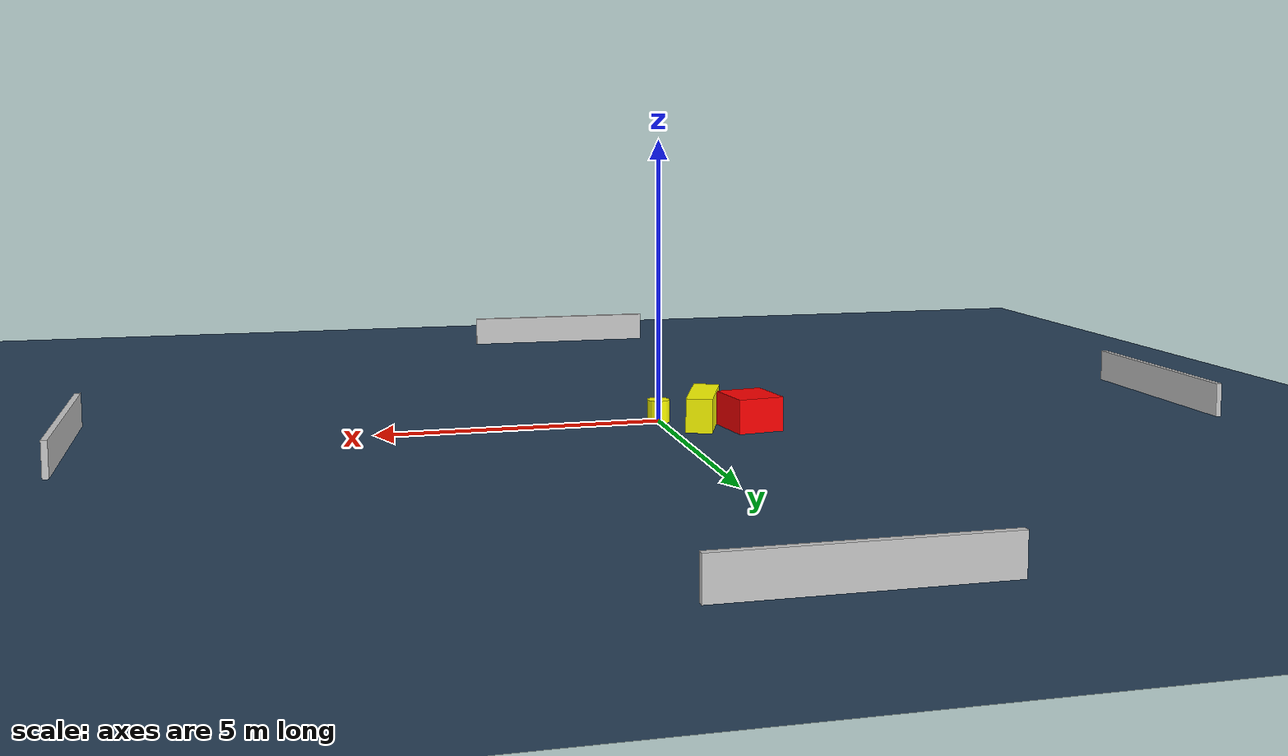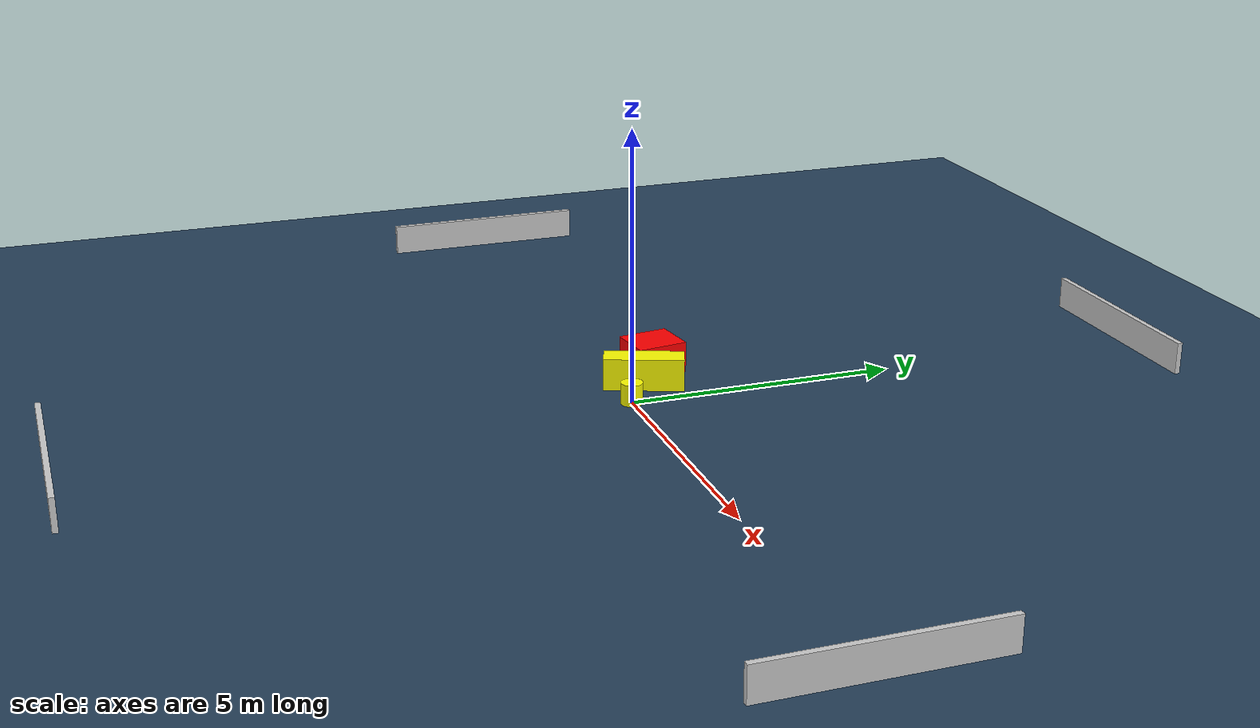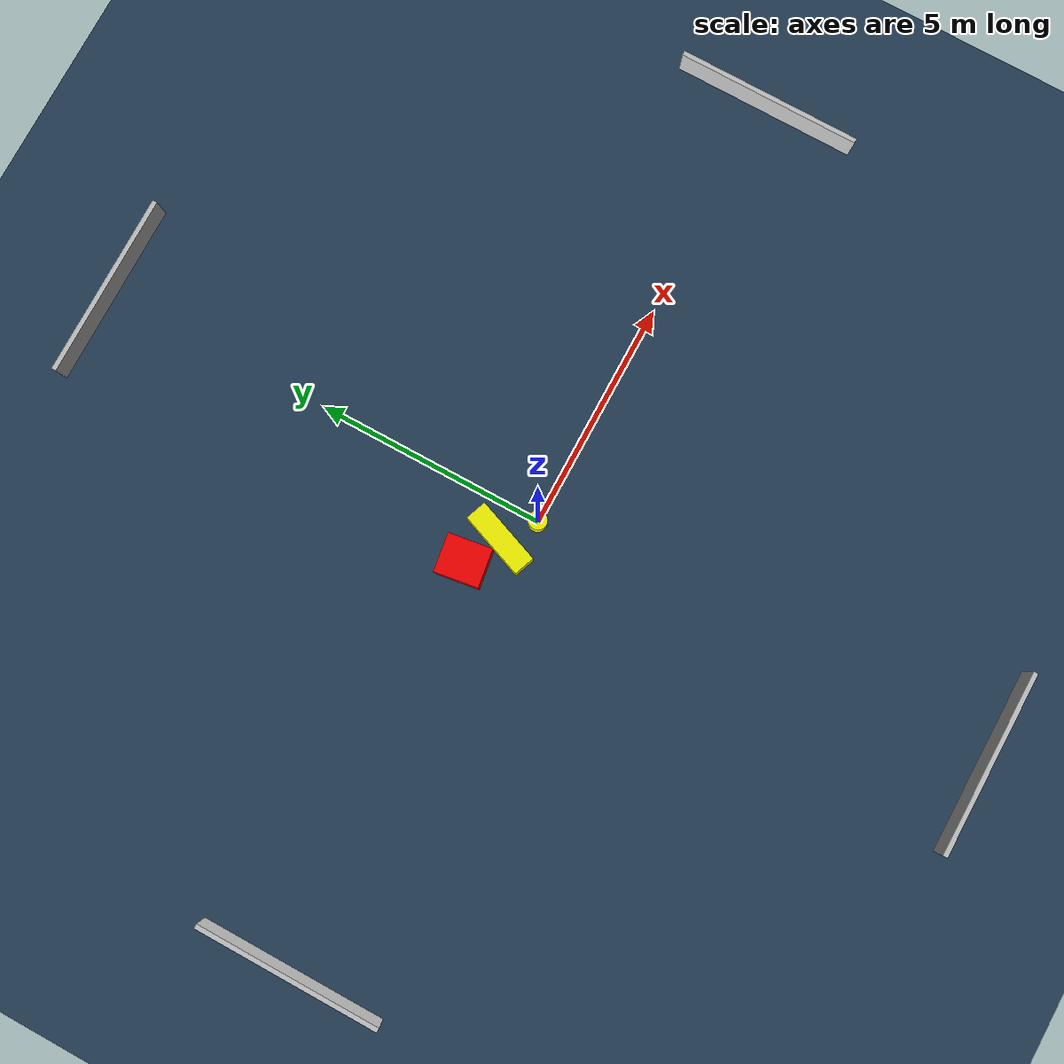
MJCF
<?xml version="1.0" ?>
<mujoco model="generated_environment">
  <option timestep="0.01" integrator="RK4" cone="elliptic"/>
  <default>
    <geom density="1"/>
  </default>
  <asset>
    <texture builtin="gradient" height="3072" name="skybox" rgb1="0.3 0.5 0.7" rgb2="0 0 0" type="skybox" width="512"/>
    <texture builtin="checker" height="300" name="groundplane" rgb1="0.2 0.3 0.4" rgb2="0.1 0.2 0.3" type="2d" width="300"/>
    <material name="groundplane" reflectance="0.2" texrepeat="5 5" texture="groundplane"/>
  </asset>
  <worldbody>
    <light dir="0 0 -1" directional="true" pos="0 0 1.5"/>
    <geom condim="3" friction="0.5 0.005 0.001" material="groundplane" name="floor" pos="0 0 0" size="0 0 0.05" type="plane"/>
    <body name="walls">
      <geom name="wall_1" condim="4" pos="-10.0 0.0 0.3" rgba="0.800000011920929 0.800000011920929 0.800000011920929 1.0" size="0.05 2.0 0.3" type="box"/>
      <geom name="wall_2" condim="4" pos="10.0 0.0 0.3" rgba="0.800000011920929 0.800000011920929 0.800000011920929 1.0" size="0.05 2.0 0.3" type="box"/>
      <geom name="wall_3" condim="4" pos="0.0 -10.0 0.3" rgba="0.800000011920929 0.800000011920929 0.800000011920929 1.0" size="2.0 0.05 0.3" type="box"/>
      <geom name="wall_4" condim="4" pos="0.0 10.0 0.3" rgba="0.800000011920929 0.800000011920929 0.800000011920929 1.0" size="2.0 0.05 0.3" type="box"/>
    </body>
    <body name="robot">
      <joint name="joint_x" type="slide" pos="0 0 0" axis="1 0 0"/>
      <joint name="joint_y" type="slide" pos="0 0 0" axis="0 1 0"/>
      <geom name="robot" type="cylinder" pos="0.0 0.0 0.2" size="0.2 0.2 0.0" mass="5.0" friction="1.0 0.005 0.0001" condim="4" rgba="1.0 1.0 0.0 1.0"/>
    </body>
    <body name="obstacle_1_movable">
      <geom name="obstacle_1_movable" condim="4" pos="-0.6917869543695687 0.47611912378529203 0.3" euler="0 0 69.37761594950886" friction="0.0 0.005 0.001" rgba="1.0 1.0 0.0 1.0" size="0.7371171507771519 0.23202104371146207 0.3" type="box" mass="0.1"/>
      <joint type="free"/>
    </body>
    <body name="obstacle_2_static">
      <geom name="obstacle_2_static" condim="4" pos="-1.42326935797605 0.9063979474163767 0.3" euler="0 0 98.23086154589498" friction="0.0 0.005 0.001" rgba="1.0 0.0 0.0 1.0" size="0.47425185750569543 0.41602100624352256 0.3" type="box"/>
    </body>
  </worldbody>
  <actuator>
    <motor name="actuator_x" joint="joint_x" gear="1" ctrlrange="-1 1"/>
    <motor name="actuator_y" joint="joint_y" gear="1" ctrlrange="-1 1"/>
  </actuator>
</mujoco>
